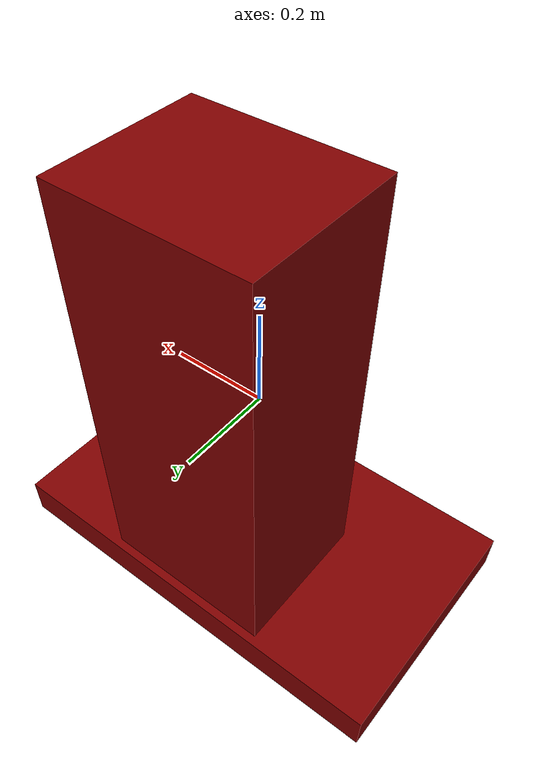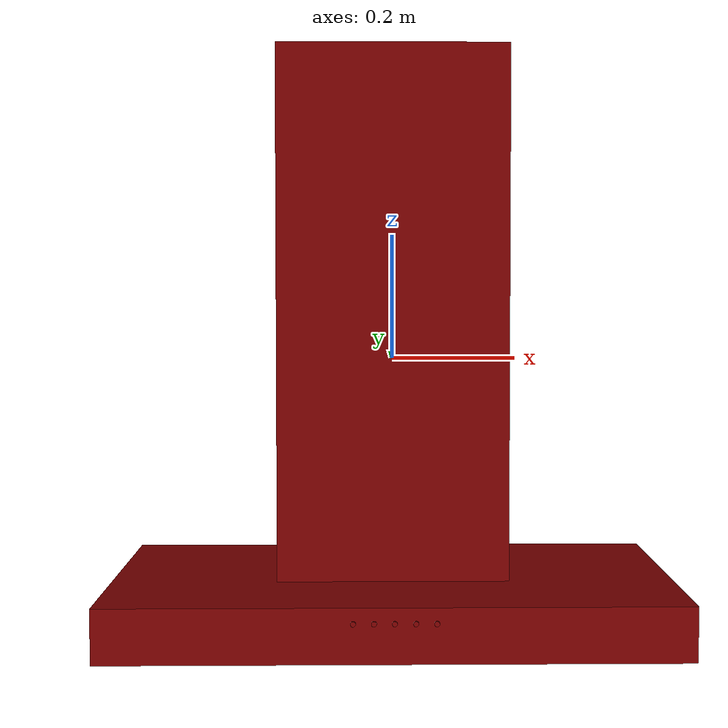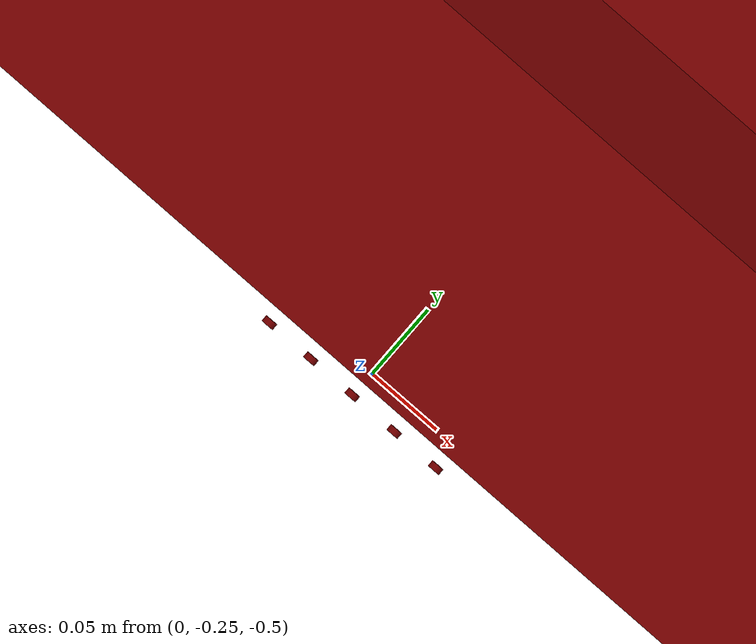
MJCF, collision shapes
<?xml version='1.0' encoding='UTF-8'?>
<mujoco model="model">
  <compiler angle="radian"/>
  <asset>
    <mesh file="visuals/Body001.obj" name="Body001_vis"/>
    <mesh file="visuals/Button001.obj" name="Button001_vis"/>
    <mesh file="visuals/Button002.obj" name="Button002_vis"/>
    <mesh file="visuals/Button003.obj" name="Button003_vis"/>
    <mesh file="visuals/Button004.obj" name="Button004_vis"/>
    <mesh file="visuals/Button005.obj" name="Button005_vis"/>
    <texture file="visuals/T_BC001.png" name="Body001_material" type="2d"/>
    <material name="Body001_material" rgba="1 1 1 1.0" texture="Body001_material" shininess="0.141421377658844" specular="0.3103448502657381"/>
    <texture file="visuals/T_BC001.png" name="Button001_material" type="2d"/>
    <material name="Button001_material" rgba="1 1 1 1.0" texture="Button001_material" shininess="0.141421377658844" specular="0.3103448502657381"/>
    <texture file="visuals/T_BC001.png" name="Button002_material" type="2d"/>
    <material name="Button002_material" rgba="1 1 1 1.0" texture="Button002_material" shininess="0.141421377658844" specular="0.3103448502657381"/>
    <texture file="visuals/T_BC001.png" name="Button003_material" type="2d"/>
    <material name="Button003_material" rgba="1 1 1 1.0" texture="Button003_material" shininess="0.141421377658844" specular="0.3103448502657381"/>
    <texture file="visuals/T_BC001.png" name="Button004_material" type="2d"/>
    <material name="Button004_material" rgba="1 1 1 1.0" texture="Button004_material" shininess="0.141421377658844" specular="0.3103448502657381"/>
    <texture file="visuals/T_BC001.png" name="Button005_material" type="2d"/>
    <material name="Button005_material" rgba="1 1 1 1.0" texture="Button005_material" shininess="0.141421377658844" specular="0.3103448502657381"/>
  </asset>
  <default>
    <default class="visual">
      <geom conaffinity="0" contype="0" group="1" type="mesh"/>
    </default>
    <default class="collision">
      <geom group="0" rgba="0.5 0 0 0.5"/>
    </default>
    <default class="spawn">
      <geom group="0" rgba="1 1 1 0.5" contype="0" conaffinity="0"/>
      <site group="0" rgba="1 1 1 0.5"/>
    </default>
    <default class="region">
      <geom group="1" conaffinity="0" contype="0" rgba="0 1 0 0"/>
    </default>
  </default>
  <worldbody>
    <body>
      <body name="object">
        <geom mesh="Body001_vis" type="mesh" solimp="0.998 0.998 0.001" solref="0.001 1" density="100" friction="0.95 0.3 0.1" class="visual" material="Body001_material"/>
        <geom class="collision" type="box" pos="0.000196 0.092088 0.070343" size="0.1861402839422226 0.15583784878253937 0.4318586587905884" quat="1.0 0.0 0.0 0.0"/>
        <geom class="collision" type="box" pos="-0.000000 0.005752 -0.398987" size="0.45068585872650146 0.2600840628147125 0.042565152049064636" quat="1.0 0.0 0.0 0.0"/>
        <geom class="collision" type="box" pos="0.000552 0.013435 -0.451358" size="0.09031492471694946 0.09031492471694946 0.020262539386749268" quat="1.0 0.0 0.0 0.0"/>
        <geom class="collision" type="box" pos="0.000552 0.013435 -0.485996" size="0.03653751313686371 0.03653751313686371 0.01597134955227375" quat="1.0 0.0 0.0 0.0"/>
        <body name="Button001">
          <joint axis="0.0 1.0 0.0" pos="-0.062503 -0.263903 -0.378246" limited="true" name="Button001_joint" range="0.0 0.003" type="slide" damping="1" frictionloss="1" armature=".01" stiffness="0.05"/>
          <geom mesh="Button001_vis" type="mesh" solimp="0.998 0.998 0.001" solref="0.001 1" density="100" friction="0.95 0.3 0.1" class="visual" material="Button001_material"/>
          <geom class="collision" type="cylinder" pos="-0.062509 -0.263901 -0.378227" size="0.004022396169602871 0.0019342792220413685" quat="0.7071068286895752 0.7071067690849304 0.0 0.0"/>
        </body>
        <body name="Button002">
          <joint axis="0.0 1.0 0.0" pos="-0.031597 -0.263903 -0.378246" limited="true" name="Button002_joint" range="0.0 0.003" type="slide" damping="1" frictionloss="1" armature=".01" stiffness="0.05"/>
          <geom mesh="Button002_vis" type="mesh" solimp="0.998 0.998 0.001" solref="0.001 1" density="100" friction="0.95 0.3 0.1" class="visual" material="Button002_material"/>
          <geom class="collision" type="cylinder" pos="-0.031595 -0.263901 -0.378227" size="0.004022396169602871 0.0019342792220413685" quat="0.7071068286895752 0.7071067690849304 0.0 0.0"/>
        </body>
        <body name="Button003">
          <joint axis="0.0 1.0 0.0" pos="-0.000713 -0.263903 -0.378246" limited="true" name="Button003_joint" range="0.0 0.003" type="slide" damping="1" frictionloss="1" armature=".01" stiffness="0.05"/>
          <geom mesh="Button003_vis" type="mesh" solimp="0.998 0.998 0.001" solref="0.001 1" density="100" friction="0.95 0.3 0.1" class="visual" material="Button003_material"/>
          <geom class="collision" type="cylinder" pos="-0.000722 -0.263901 -0.378227" size="0.004022396169602871 0.0019342792220413685" quat="0.7071068286895752 0.7071067690849304 0.0 0.0"/>
        </body>
        <body name="Button004">
          <joint axis="0.0 1.0 0.0" pos="0.030713 -0.263903 -0.378246" limited="true" name="Button004_joint" range="0.0 0.003" type="slide" damping="1" frictionloss="1" armature=".01" stiffness="0.05"/>
          <geom mesh="Button004_vis" type="mesh" solimp="0.998 0.998 0.001" solref="0.001 1" density="100" friction="0.95 0.3 0.1" class="visual" material="Button004_material"/>
          <geom class="collision" type="cylinder" pos="0.030701 -0.263901 -0.378227" size="0.004022396169602871 0.0019342792220413685" quat="0.7071068286895752 0.7071067690849304 0.0 0.0"/>
        </body>
        <body name="Button005">
          <joint axis="0.0 1.0 0.0" pos="0.061596 -0.263903 -0.378246" limited="true" name="Button005_joint" range="0.0 0.003" type="slide" damping="1" frictionloss="1" armature=".01" stiffness="0.05"/>
          <geom mesh="Button005_vis" type="mesh" solimp="0.998 0.998 0.001" solref="0.001 1" density="100" friction="0.95 0.3 0.1" class="visual" material="Button005_material"/>
          <geom class="collision" type="cylinder" pos="0.061624 -0.263901 -0.378227" size="0.004022396169602871 0.0019342792220413685" quat="0.7071068286895752 0.7071067690849304 0.0 0.0"/>
        </body>
        <geom class="region" name="reg_main" type="box" pos="-1.000000000001e-06 -0.00015149999999999886 -0.0003775000000000306" size="0.45023199999999997 0.26565150000000004 0.5018245"/>
      </body>
    </body>
  </worldbody>
  <actuator>
    <motor name="Button001_joint_actuator" joint="Button001_joint" gear="0.1"/>
    <motor name="Button002_joint_actuator" joint="Button002_joint" gear="0.1"/>
    <motor name="Button003_joint_actuator" joint="Button003_joint" gear="0.1"/>
    <motor name="Button004_joint_actuator" joint="Button004_joint" gear="0.1"/>
    <motor name="Button005_joint_actuator" joint="Button005_joint" gear="0.1"/>
  </actuator>
</mujoco>
